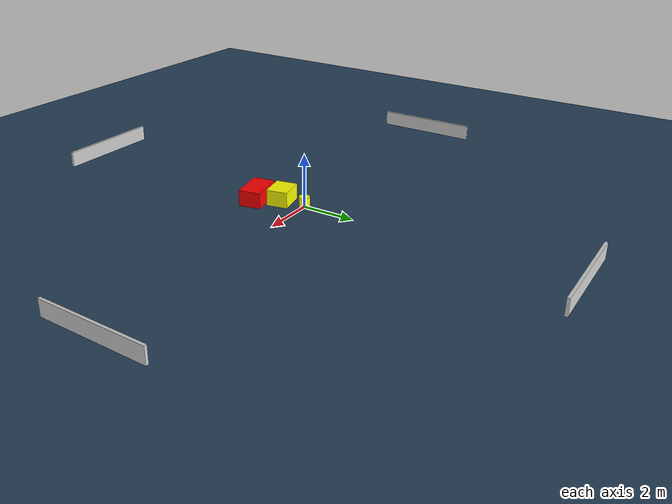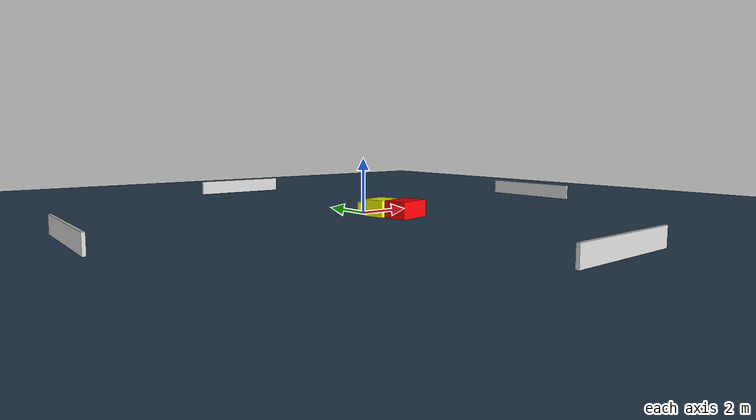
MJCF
<?xml version="1.0" ?>
<mujoco model="generated_environment">
  <option timestep="0.01" integrator="RK4" cone="elliptic"/>
  <default>
    <geom density="1"/>
  </default>
  <asset>
    <texture builtin="gradient" height="3072" name="skybox" rgb1="0.3 0.5 0.7" rgb2="0 0 0" type="skybox" width="512"/>
    <texture builtin="checker" height="300" name="groundplane" rgb1="0.2 0.3 0.4" rgb2="0.1 0.2 0.3" type="2d" width="300"/>
    <material name="groundplane" reflectance="0.2" texrepeat="5 5" texture="groundplane"/>
  </asset>
  <worldbody>
    <light dir="0 0 -1" directional="true" pos="0 0 1.5"/>
    <geom condim="3" friction="0.5 0.005 0.001" material="groundplane" name="floor" pos="0 0 0" size="0 0 0.05" type="plane"/>
    <body name="walls">
      <geom name="wall_1" condim="4" pos="-10.0 0.0 0.3" rgba="0.800000011920929 0.800000011920929 0.800000011920929 1.0" size="0.05 2.0 0.3" type="box"/>
      <geom name="wall_2" condim="4" pos="10.0 0.0 0.3" rgba="0.800000011920929 0.800000011920929 0.800000011920929 1.0" size="0.05 2.0 0.3" type="box"/>
      <geom name="wall_3" condim="4" pos="0.0 -10.0 0.3" rgba="0.800000011920929 0.800000011920929 0.800000011920929 1.0" size="2.0 0.05 0.3" type="box"/>
      <geom name="wall_4" condim="4" pos="0.0 10.0 0.3" rgba="0.800000011920929 0.800000011920929 0.800000011920929 1.0" size="2.0 0.05 0.3" type="box"/>
    </body>
    <body name="robot">
      <joint name="joint_x" type="slide" pos="0 0 0" axis="1 0 0"/>
      <joint name="joint_y" type="slide" pos="0 0 0" axis="0 1 0"/>
      <geom name="robot" type="cylinder" pos="0.0 0.0 0.2" size="0.2 0.2 0.0" mass="5.0" friction="1.0 0.005 0.0001" condim="4" rgba="1.0 1.0 0.0 1.0"/>
    </body>
    <body name="obstacle_1_movable">
      <geom name="obstacle_1_movable" condim="4" pos="0.10796185228280222 -0.9163941393910923 0.3" euler="0 0 102.11236290413592" friction="0.0 0.005 0.001" rgba="1.0 1.0 0.0 1.0" size="0.39823383329569606 0.47979122864580137 0.3" type="box" mass="0.1"/>
      <joint type="free"/>
    </body>
    <body name="obstacle_2_static">
      <geom name="obstacle_2_static" condim="4" pos="0.5062822486018295 -1.752548398136398 0.3" euler="0 0 282.5742471748061" friction="0.0 0.005 0.001" rgba="1.0 0.0 0.0 1.0" size="0.4125594137591303 0.657463294330134 0.3" type="box"/>
    </body>
  </worldbody>
  <actuator>
    <motor name="actuator_x" joint="joint_x" gear="1" ctrlrange="-1 1"/>
    <motor name="actuator_y" joint="joint_y" gear="1" ctrlrange="-1 1"/>
  </actuator>
</mujoco>
